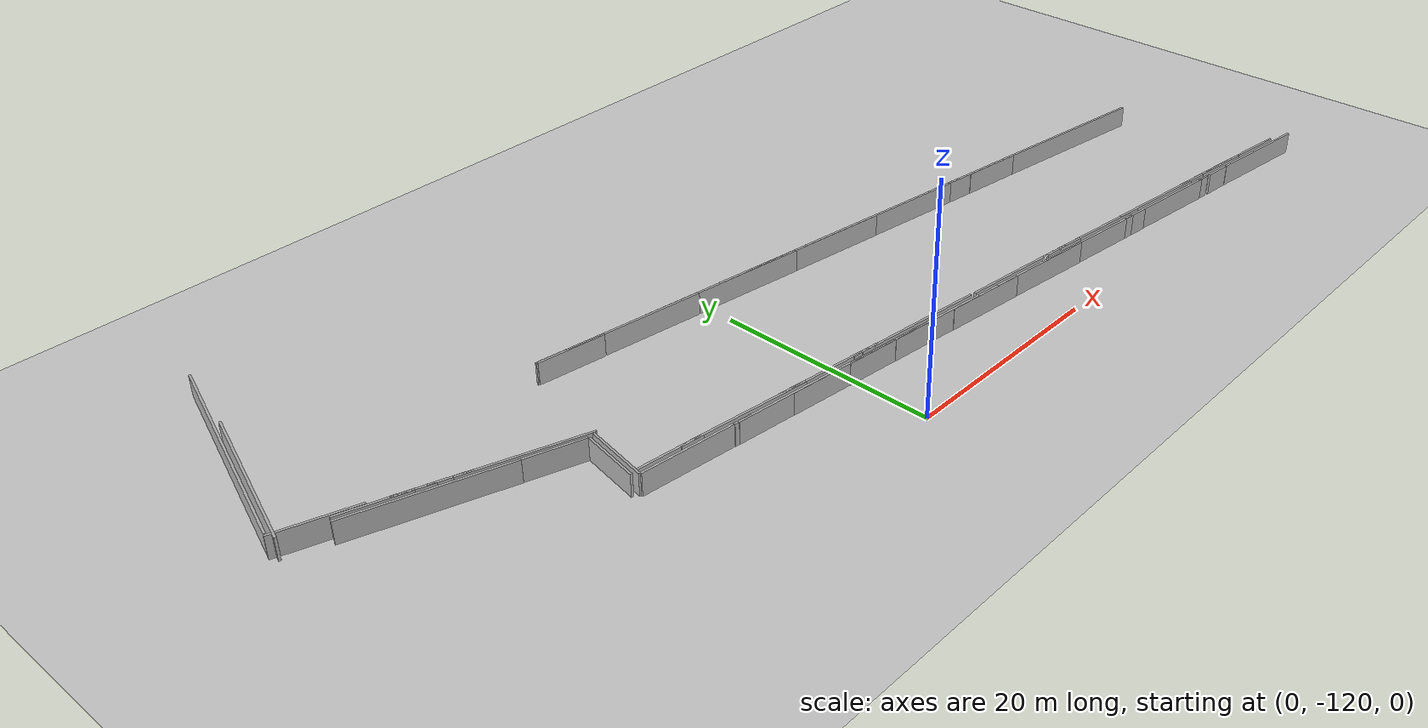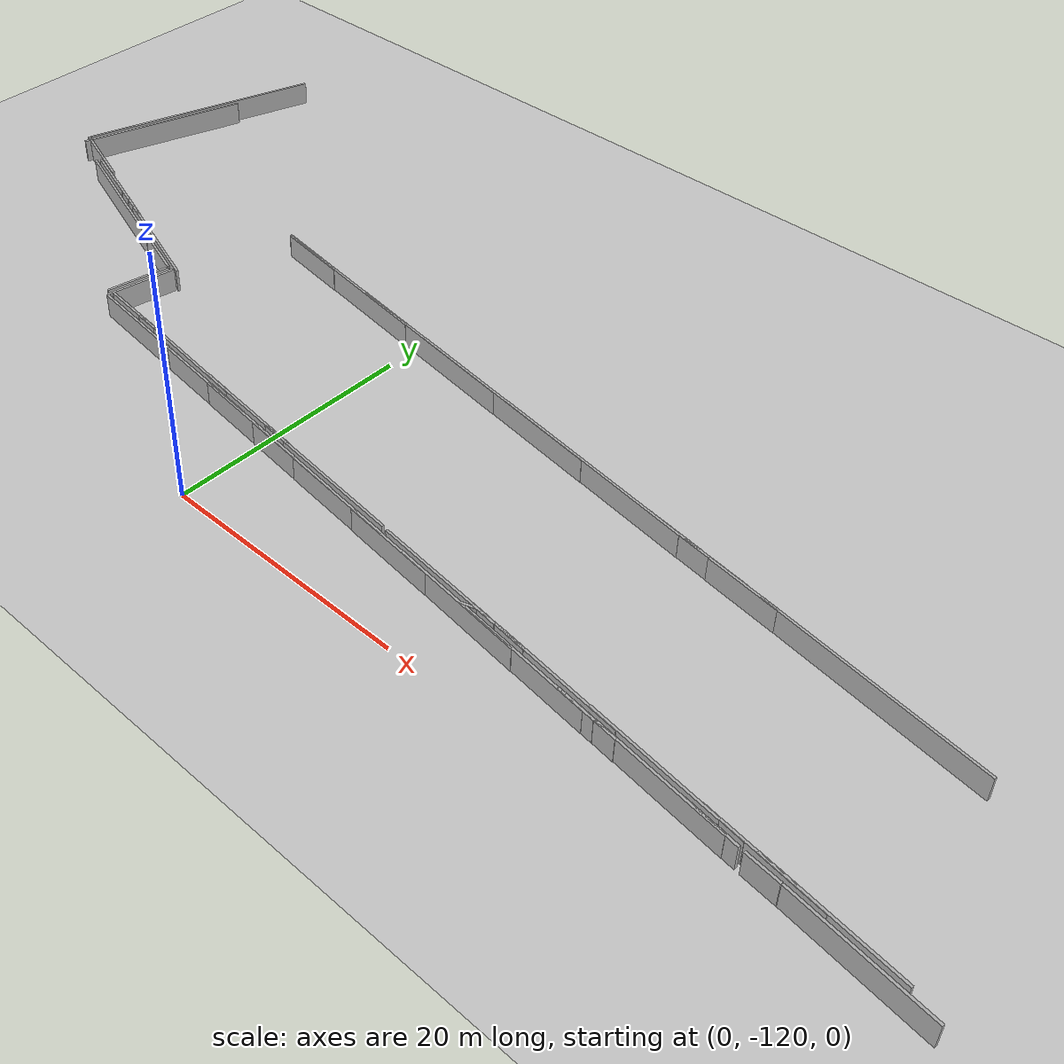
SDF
<sdf version="1.7">
 <world name="slam_world">
  <model name="ground_plane">
   <static>1</static>
   <link name="link">
    <collision name="collision">
     <geometry><plane><normal>0 0 1</normal><size>100 100</size></plane></geometry>
    </collision>
    <visual name="visual">
     <geometry><plane><normal>0 0 1</normal><size>100 100</size></plane></geometry>
     <material>
      <ambient>0.8 0.8 0.8 1</ambient>
      <diffuse>0.8 0.8 0.8 1</diffuse>
      <specular>0.8 0.8 0.8 1</specular>
     </material>
    </visual>
   </link>
  </model>
  <model name="wall_16">
   <static>1</static>
   <pose>-0.999 -112.875 1 0 0 -0.109089</pose>
   <link name="link">
    <collision name="collision"><geometry><box><size>10.5628 0.2 2</size></box></geometry></collision>
    <visual name="visual">
     <geometry><box><size>10.5628 0.2 2</size></box></geometry>
     <material><ambient>0.5 0.5 0.5 1</ambient><diffuse>0.7 0.7 0.7 1</diffuse></material>
    </visual>
   </link>
  </model>
  <model name="wall_35">
   <static>1</static>
   <pose>-6.724 -112.225 1 0 0 -0.108382</pose>
   <link name="link">
    <collision name="collision"><geometry><box><size>9.70696 0.2 2</size></box></geometry></collision>
    <visual name="visual">
     <geometry><box><size>9.70696 0.2 2</size></box></geometry>
     <material><ambient>0.5 0.5 0.5 1</ambient><diffuse>0.7 0.7 0.7 1</diffuse></material>
    </visual>
   </link>
  </model>
  <model name="wall_41">
   <static>1</static>
   <pose>38.726 -117.4 1 0 0 -0.11768</pose>
   <link name="link">
    <collision name="collision"><geometry><box><size>10.2207 0.2 2</size></box></geometry></collision>
    <visual name="visual">
     <geometry><box><size>10.2207 0.2 2</size></box></geometry>
     <material><ambient>0.5 0.5 0.5 1</ambient><diffuse>0.7 0.7 0.7 1</diffuse></material>
    </visual>
   </link>
  </model>
  <model name="wall_53">
   <static>1</static>
   <pose>-37.724 -86.975 1 0 -0 1.25809</pose>
   <link name="link">
    <collision name="collision"><geometry><box><size>20.9668 0.2 2</size></box></geometry></collision>
    <visual name="visual">
     <geometry><box><size>20.9668 0.2 2</size></box></geometry>
     <material><ambient>0.5 0.5 0.5 1</ambient><diffuse>0.7 0.7 0.7 1</diffuse></material>
    </visual>
   </link>
  </model>
  <model name="wall_68">
   <static>1</static>
   <pose>43.651 -103.35 1 0 0 -0.137066</pose>
   <link name="link">
    <collision name="collision"><geometry><box><size>17.5647 0.2 2</size></box></geometry></collision>
    <visual name="visual">
     <geometry><box><size>17.5647 0.2 2</size></box></geometry>
     <material><ambient>0.5 0.5 0.5 1</ambient><diffuse>0.7 0.7 0.7 1</diffuse></material>
    </visual>
   </link>
  </model>
  <model name="wall_86">
   <static>1</static>
   <pose>52.776 -119 1 0 0 -0.11768</pose>
   <link name="link">
    <collision name="collision"><geometry><box><size>10.2207 0.2 2</size></box></geometry></collision>
    <visual name="visual">
     <geometry><box><size>10.2207 0.2 2</size></box></geometry>
     <material><ambient>0.5 0.5 0.5 1</ambient><diffuse>0.7 0.7 0.7 1</diffuse></material>
    </visual>
   </link>
  </model>
  <model name="wall_87">
   <static>1</static>
   <pose>-9.774 -111.375 1 0 0 -0.117934</pose>
   <link name="link">
    <collision name="collision"><geometry><box><size>10.6238 0.2 2</size></box></geometry></collision>
    <visual name="visual">
     <geometry><box><size>10.6238 0.2 2</size></box></geometry>
     <material><ambient>0.5 0.5 0.5 1</ambient><diffuse>0.7 0.7 0.7 1</diffuse></material>
    </visual>
   </link>
  </model>
  <model name="wall_97">
   <static>1</static>
   <pose>8.026 -113.4 1 0 0 -0.109153</pose>
   <link name="link">
    <collision name="collision"><geometry><box><size>11.0156 0.2 2</size></box></geometry></collision>
    <visual name="visual">
     <geometry><box><size>11.0156 0.2 2</size></box></geometry>
     <material><ambient>0.5 0.5 0.5 1</ambient><diffuse>0.7 0.7 0.7 1</diffuse></material>
    </visual>
   </link>
  </model>
  <model name="wall_101">
   <static>1</static>
   <pose>-15.949 -111.175 1 0 0 -0.108764</pose>
   <link name="link">
    <collision name="collision"><geometry><box><size>8.75171 0.2 2</size></box></geometry></collision>
    <visual name="visual">
     <geometry><box><size>8.75171 0.2 2</size></box></geometry>
     <material><ambient>0.5 0.5 0.5 1</ambient><diffuse>0.7 0.7 0.7 1</diffuse></material>
    </visual>
   </link>
  </model>
  <model name="wall_102">
   <static>1</static>
   <pose>19.251 -100.05 1 0 0 -0.137066</pose>
   <link name="link">
    <collision name="collision"><geometry><box><size>17.5647 0.2 2</size></box></geometry></collision>
    <visual name="visual">
     <geometry><box><size>17.5647 0.2 2</size></box></geometry>
     <material><ambient>0.5 0.5 0.5 1</ambient><diffuse>0.7 0.7 0.7 1</diffuse></material>
    </visual>
   </link>
  </model>
  <model name="wall_110">
   <static>1</static>
   <pose>21.376 -115.425 1 0 0 -0.117934</pose>
   <link name="link">
    <collision name="collision"><geometry><box><size>10.6238 0.2 2</size></box></geometry></collision>
    <visual name="visual">
     <geometry><box><size>10.6238 0.2 2</size></box></geometry>
     <material><ambient>0.5 0.5 0.5 1</ambient><diffuse>0.7 0.7 0.7 1</diffuse></material>
    </visual>
   </link>
  </model>
  <model name="wall_139">
   <static>1</static>
   <pose>4.026 -113.45 1 0 0 -0.108858</pose>
   <link name="link">
    <collision name="collision"><geometry><box><size>9.20448 0.2 2</size></box></geometry></collision>
    <visual name="visual">
     <geometry><box><size>9.20448 0.2 2</size></box></geometry>
     <material><ambient>0.5 0.5 0.5 1</ambient><diffuse>0.7 0.7 0.7 1</diffuse></material>
    </visual>
   </link>
  </model>
  <model name="wall_145">
   <static>1</static>
   <pose>29.976 -115.9 1 0 0 -0.11768</pose>
   <link name="link">
    <collision name="collision"><geometry><box><size>10.2207 0.2 2</size></box></geometry></collision>
    <visual name="visual">
     <geometry><box><size>10.2207 0.2 2</size></box></geometry>
     <material><ambient>0.5 0.5 0.5 1</ambient><diffuse>0.7 0.7 0.7 1</diffuse></material>
    </visual>
   </link>
  </model>
  <model name="wall_153">
   <static>1</static>
   <pose>50.626 -118.25 1 0 0 -0.11768</pose>
   <link name="link">
    <collision name="collision"><geometry><box><size>10.2207 0.2 2</size></box></geometry></collision>
    <visual name="visual">
     <geometry><box><size>10.2207 0.2 2</size></box></geometry>
     <material><ambient>0.5 0.5 0.5 1</ambient><diffuse>0.7 0.7 0.7 1</diffuse></material>
    </visual>
   </link>
  </model>
  <model name="wall_174">
   <static>1</static>
   <pose>-8.599 -96.275 1 0 0 -0.138714</pose>
   <link name="link">
    <collision name="collision"><geometry><box><size>15.5494 0.2 2</size></box></geometry></collision>
    <visual name="visual">
     <geometry><box><size>15.5494 0.2 2</size></box></geometry>
     <material><ambient>0.5 0.5 0.5 1</ambient><diffuse>0.7 0.7 0.7 1</diffuse></material>
    </visual>
   </link>
  </model>
  <model name="wall_191">
   <static>1</static>
   <pose>-31.049 -101.25 1 0 0 -0.328876</pose>
   <link name="link">
    <collision name="collision"><geometry><box><size>13.3135 0.2 2</size></box></geometry></collision>
    <visual name="visual">
     <geometry><box><size>13.3135 0.2 2</size></box></geometry>
     <material><ambient>0.5 0.5 0.5 1</ambient><diffuse>0.7 0.7 0.7 1</diffuse></material>
    </visual>
   </link>
  </model>
  <model name="wall_200">
   <static>1</static>
   <pose>10.001 -98.8 1 0 0 -0.137066</pose>
   <link name="link">
    <collision name="collision"><geometry><box><size>17.5647 0.2 2</size></box></geometry></collision>
    <visual name="visual">
     <geometry><box><size>17.5647 0.2 2</size></box></geometry>
     <material><ambient>0.5 0.5 0.5 1</ambient><diffuse>0.7 0.7 0.7 1</diffuse></material>
    </visual>
   </link>
  </model>
  <model name="wall_203">
   <static>1</static>
   <pose>-34.399 -99.625 1 0 0 -0.324475</pose>
   <link name="link">
    <collision name="collision"><geometry><box><size>5.8028 0.2 2</size></box></geometry></collision>
    <visual name="visual">
     <geometry><box><size>5.8028 0.2 2</size></box></geometry>
     <material><ambient>0.5 0.5 0.5 1</ambient><diffuse>0.7 0.7 0.7 1</diffuse></material>
    </visual>
   </link>
  </model>
  <model name="wall_214">
   <static>1</static>
   <pose>-24.053 -103.158 1 0 0 -0.330679</pose>
   <link name="link">
    <collision name="collision"><geometry><box><size>10.6257 0.2 2</size></box></geometry></collision>
    <visual name="visual">
     <geometry><box><size>10.6257 0.2 2</size></box></geometry>
     <material><ambient>0.5 0.5 0.5 1</ambient><diffuse>0.7 0.7 0.7 1</diffuse></material>
    </visual>
   </link>
  </model>
  <model name="wall_216">
   <static>1</static>
   <pose>9.101 -114.025 1 0 0 -0.108942</pose>
   <link name="link">
    <collision name="collision"><geometry><box><size>9.65725 0.2 2</size></box></geometry></collision>
    <visual name="visual">
     <geometry><box><size>9.65725 0.2 2</size></box></geometry>
     <material><ambient>0.5 0.5 0.5 1</ambient><diffuse>0.7 0.7 0.7 1</diffuse></material>
    </visual>
   </link>
  </model>
  <model name="wall_219">
   <static>1</static>
   <pose>37.876 -116.8 1 0 0 -0.11768</pose>
   <link name="link">
    <collision name="collision"><geometry><box><size>10.2207 0.2 2</size></box></geometry></collision>
    <visual name="visual">
     <geometry><box><size>10.2207 0.2 2</size></box></geometry>
     <material><ambient>0.5 0.5 0.5 1</ambient><diffuse>0.7 0.7 0.7 1</diffuse></material>
    </visual>
   </link>
  </model>
  <model name="wall_229">
   <static>1</static>
   <pose>46.651 -117.8 1 0 0 -0.119429</pose>
   <link name="link">
    <collision name="collision"><geometry><box><size>7.55381 0.2 2</size></box></geometry></collision>
    <visual name="visual">
     <geometry><box><size>7.55381 0.2 2</size></box></geometry>
     <material><ambient>0.5 0.5 0.5 1</ambient><diffuse>0.7 0.7 0.7 1</diffuse></material>
    </visual>
   </link>
  </model>
  <model name="wall_245">
   <static>1</static>
   <pose>18.976 -114.65 1 0 0 -0.109019</pose>
   <link name="link">
    <collision name="collision"><geometry><box><size>10.11 0.2 2</size></box></geometry></collision>
    <visual name="visual">
     <geometry><box><size>10.11 0.2 2</size></box></geometry>
     <material><ambient>0.5 0.5 0.5 1</ambient><diffuse>0.7 0.7 0.7 1</diffuse></material>
    </visual>
   </link>
  </model>
  <model name="wall_257">
   <static>1</static>
   <pose>-38.449 -90.85 1 0 -0 1.2577</pose>
   <link name="link">
    <collision name="collision"><geometry><box><size>14.6103 0.2 2</size></box></geometry></collision>
    <visual name="visual">
     <geometry><box><size>14.6103 0.2 2</size></box></geometry>
     <material><ambient>0.5 0.5 0.5 1</ambient><diffuse>0.7 0.7 0.7 1</diffuse></material>
    </visual>
   </link>
  </model>
  <model name="wall_265">
   <static>1</static>
   <pose>30.576 -101.575 1 0 0 -0.12905</pose>
   <link name="link">
    <collision name="collision"><geometry><box><size>6.60492 0.2 2</size></box></geometry></collision>
    <visual name="visual">
     <geometry><box><size>6.60492 0.2 2</size></box></geometry>
     <material><ambient>0.5 0.5 0.5 1</ambient><diffuse>0.7 0.7 0.7 1</diffuse></material>
    </visual>
   </link>
  </model>
  <model name="wall_272">
   <static>1</static>
   <pose>27.526 -116.125 1 0 0 -0.117934</pose>
   <link name="link">
    <collision name="collision"><geometry><box><size>10.6238 0.2 2</size></box></geometry></collision>
    <visual name="visual">
     <geometry><box><size>10.6238 0.2 2</size></box></geometry>
     <material><ambient>0.5 0.5 0.5 1</ambient><diffuse>0.7 0.7 0.7 1</diffuse></material>
    </visual>
   </link>
  </model>
  <model name="wall_281">
   <static>1</static>
   <pose>-19.849 -107.8 1 0 -0 1.39712</pose>
   <link name="link">
    <collision name="collision"><geometry><box><size>5.78705 0.2 2</size></box></geometry></collision>
    <visual name="visual">
     <geometry><box><size>5.78705 0.2 2</size></box></geometry>
     <material><ambient>0.5 0.5 0.5 1</ambient><diffuse>0.7 0.7 0.7 1</diffuse></material>
    </visual>
   </link>
  </model>
  <model name="wall_284">
   <static>1</static>
   <pose>-2.649 -112.175 1 0 0 -0.109944</pose>
   <link name="link">
    <collision name="collision"><geometry><box><size>7.74677 0.2 2</size></box></geometry></collision>
    <visual name="visual">
     <geometry><box><size>7.74677 0.2 2</size></box></geometry>
     <material><ambient>0.5 0.5 0.5 1</ambient><diffuse>0.7 0.7 0.7 1</diffuse></material>
    </visual>
   </link>
  </model>
  <model name="wall_333">
   <static>1</static>
   <pose>-20.349 -107.7 1 0 -0 1.39942</pose>
   <link name="link">
    <collision name="collision"><geometry><box><size>5.27731 0.2 2</size></box></geometry></collision>
    <visual name="visual">
     <geometry><box><size>5.27731 0.2 2</size></box></geometry>
     <material><ambient>0.5 0.5 0.5 1</ambient><diffuse>0.7 0.7 0.7 1</diffuse></material>
    </visual>
   </link>
  </model>
  <model name="wall_335">
   <static>1</static>
   <pose>1.676 -97.675 1 0 0 -0.137393</pose>
   <link name="link">
    <collision name="collision"><geometry><box><size>15.6979 0.2 2</size></box></geometry></collision>
    <visual name="visual">
     <geometry><box><size>15.6979 0.2 2</size></box></geometry>
     <material><ambient>0.5 0.5 0.5 1</ambient><diffuse>0.7 0.7 0.7 1</diffuse></material>
    </visual>
   </link>
  </model>
  <model name="wall_356">
   <static>1</static>
   <pose>-22.449 -104.15 1 0 0 -0.327739</pose>
   <link name="link">
    <collision name="collision"><geometry><box><size>5.2811 0.2 2</size></box></geometry></collision>
    <visual name="visual">
     <geometry><box><size>5.2811 0.2 2</size></box></geometry>
     <material><ambient>0.5 0.5 0.5 1</ambient><diffuse>0.7 0.7 0.7 1</diffuse></material>
    </visual>
   </link>
  </model>
  <model name="wall_370">
   <static>1</static>
   <pose>-17.649 -110.475 1 0 0 -0.107428</pose>
   <link name="link">
    <collision name="collision"><geometry><box><size>5.12957 0.2 2</size></box></geometry></collision>
    <visual name="visual">
     <geometry><box><size>5.12957 0.2 2</size></box></geometry>
     <material><ambient>0.5 0.5 0.5 1</ambient><diffuse>0.7 0.7 0.7 1</diffuse></material>
    </visual>
   </link>
  </model>
  <model name="wall_379">
   <static>1</static>
   <pose>25.801 -115.425 1 0 0 -0.124355</pose>
   <link name="link">
    <collision name="collision"><geometry><box><size>2.82179 0.2 2</size></box></geometry></collision>
    <visual name="visual">
     <geometry><box><size>2.82179 0.2 2</size></box></geometry>
     <material><ambient>0.5 0.5 0.5 1</ambient><diffuse>0.7 0.7 0.7 1</diffuse></material>
    </visual>
   </link>
  </model>
  <model name="wall_412">
   <static>1</static>
   <pose>33.876 -116.85 1 0 0 -0.126308</pose>
   <link name="link">
    <collision name="collision"><geometry><box><size>3.1753 0.2 2</size></box></geometry></collision>
    <visual name="visual">
     <geometry><box><size>3.1753 0.2 2</size></box></geometry>
     <material><ambient>0.5 0.5 0.5 1</ambient><diffuse>0.7 0.7 0.7 1</diffuse></material>
    </visual>
   </link>
  </model>
  <model name="wall_451">
   <static>1</static>
   <pose>33.451 -101.975 1 0 0 -0.128597</pose>
   <link name="link">
    <collision name="collision"><geometry><box><size>5.84829 0.2 2</size></box></geometry></collision>
    <visual name="visual">
     <geometry><box><size>5.84829 0.2 2</size></box></geometry>
     <material><ambient>0.5 0.5 0.5 1</ambient><diffuse>0.7 0.7 0.7 1</diffuse></material>
    </visual>
   </link>
  </model>
  <model name="wall_465">
   <static>1</static>
   <pose>42.051 -117.775 1 0 0 -0.124355</pose>
   <link name="link">
    <collision name="collision"><geometry><box><size>2.82179 0.2 2</size></box></geometry></collision>
    <visual name="visual">
     <geometry><box><size>2.82179 0.2 2</size></box></geometry>
     <material><ambient>0.5 0.5 0.5 1</ambient><diffuse>0.7 0.7 0.7 1</diffuse></material>
    </visual>
   </link>
  </model>
  <model name="wall_478">
   <static>1</static>
   <pose>14.676 -114.675 1 0 0 -0.110657</pose>
   <link name="link">
    <collision name="collision"><geometry><box><size>7.69708 0.2 2</size></box></geometry></collision>
    <visual name="visual">
     <geometry><box><size>7.69708 0.2 2</size></box></geometry>
     <material><ambient>0.5 0.5 0.5 1</ambient><diffuse>0.7 0.7 0.7 1</diffuse></material>
    </visual>
   </link>
  </model>
  <model name="wall_482">
   <static>1</static>
   <pose>43.176 -117.4 1 0 0 -0.126308</pose>
   <link name="link">
    <collision name="collision"><geometry><box><size>3.1753 0.2 2</size></box></geometry></collision>
    <visual name="visual">
     <geometry><box><size>3.1753 0.2 2</size></box></geometry>
     <material><ambient>0.5 0.5 0.5 1</ambient><diffuse>0.7 0.7 0.7 1</diffuse></material>
    </visual>
   </link>
  </model>
  <model name="wall_487">
   <static>1</static>
   <pose>32.151 -116.65 1 0 0 -0.128323</pose>
   <link name="link">
    <collision name="collision"><geometry><box><size>3.1257 0.2 2</size></box></geometry></collision>
    <visual name="visual">
     <geometry><box><size>3.1257 0.2 2</size></box></geometry>
     <material><ambient>0.5 0.5 0.5 1</ambient><diffuse>0.7 0.7 0.7 1</diffuse></material>
    </visual>
   </link>
  </model>
  <model name="wall_489">
   <static>1</static>
   <pose>-31.724 -100.5 1 0 0 -0.335968</pose>
   <link name="link">
    <collision name="collision"><geometry><box><size>3.33654 0.2 2</size></box></geometry></collision>
    <visual name="visual">
     <geometry><box><size>3.33654 0.2 2</size></box></geometry>
     <material><ambient>0.5 0.5 0.5 1</ambient><diffuse>0.7 0.7 0.7 1</diffuse></material>
    </visual>
   </link>
  </model>
  <model name="wall_490">
   <static>1</static>
   <pose>-29.224 -101.35 1 0 0 -0.335968</pose>
   <link name="link">
    <collision name="collision"><geometry><box><size>3.33654 0.2 2</size></box></geometry></collision>
    <visual name="visual">
     <geometry><box><size>3.33654 0.2 2</size></box></geometry>
     <material><ambient>0.5 0.5 0.5 1</ambient><diffuse>0.7 0.7 0.7 1</diffuse></material>
    </visual>
   </link>
  </model>
  <model name="wall_530">
   <static>1</static>
   <pose>46.376 -118.275 1 0 0 -0.097727</pose>
   <link name="link">
    <collision name="collision"><geometry><box><size>2.56223 0.2 2</size></box></geometry></collision>
    <visual name="visual">
     <geometry><box><size>2.56223 0.2 2</size></box></geometry>
     <material><ambient>0.5 0.5 0.5 1</ambient><diffuse>0.7 0.7 0.7 1</diffuse></material>
    </visual>
   </link>
  </model>
  <model name="wall_550">
   <static>1</static>
   <pose>-15.324 -110.75 1 0 0 -0.097253</pose>
   <link name="link">
    <collision name="collision"><geometry><box><size>2.05973 0.2 2</size></box></geometry></collision>
    <visual name="visual">
     <geometry><box><size>2.05973 0.2 2</size></box></geometry>
     <material><ambient>0.5 0.5 0.5 1</ambient><diffuse>0.7 0.7 0.7 1</diffuse></material>
    </visual>
   </link>
  </model>
  <model name="wall_553">
   <static>1</static>
   <pose>-37.8849 -98.1749 1 0 0 -0.328711</pose>
   <link name="link">
    <collision name="collision"><geometry><box><size>6.81487 0.2 2</size></box></geometry></collision>
    <visual name="visual">
     <geometry><box><size>6.81487 0.2 2</size></box></geometry>
     <material><ambient>0.5 0.5 0.5 1</ambient><diffuse>0.7 0.7 0.7 1</diffuse></material>
    </visual>
   </link>
  </model>
  <model name="wall_569">
   <static>1</static>
   <pose>-5.849 -111.8 1 0 0 -0.114877</pose>
   <link name="link">
    <collision name="collision"><geometry><box><size>2.61725 0.2 2</size></box></geometry></collision>
    <visual name="visual">
     <geometry><box><size>2.61725 0.2 2</size></box></geometry>
     <material><ambient>0.5 0.5 0.5 1</ambient><diffuse>0.7 0.7 0.7 1</diffuse></material>
    </visual>
   </link>
  </model>
  <model name="wall_575">
   <static>1</static>
   <pose>1.201 -112.625 1 0 0 -0.088007</pose>
   <link name="link">
    <collision name="collision"><geometry><box><size>1.7066 0.2 2</size></box></geometry></collision>
    <visual name="visual">
     <geometry><box><size>1.7066 0.2 2</size></box></geometry>
     <material><ambient>0.5 0.5 0.5 1</ambient><diffuse>0.7 0.7 0.7 1</diffuse></material>
    </visual>
   </link>
  </model>
  <model name="wall_580">
   <static>1</static>
   <pose>-13.174 -95.675 1 0 0 -0.139582</pose>
   <link name="link">
    <collision name="collision"><geometry><box><size>6.10942 0.2 2</size></box></geometry></collision>
    <visual name="visual">
     <geometry><box><size>6.10942 0.2 2</size></box></geometry>
     <material><ambient>0.5 0.5 0.5 1</ambient><diffuse>0.7 0.7 0.7 1</diffuse></material>
    </visual>
   </link>
  </model>
  <model name="wall_597">
   <static>1</static>
   <pose>22.376 -115.275 1 0 -0 0.295441</pose>
   <link name="link">
    <collision name="collision"><geometry><box><size>1.20208 0.2 2</size></box></geometry></collision>
    <visual name="visual">
     <geometry><box><size>1.20208 0.2 2</size></box></geometry>
     <material><ambient>0.5 0.5 0.5 1</ambient><diffuse>0.7 0.7 0.7 1</diffuse></material>
    </visual>
   </link>
  </model>
  <model name="wall_598">
   <static>1</static>
   <pose>23.501 -115.175 1 0 0 -0.11849</pose>
   <link name="link">
    <collision name="collision"><geometry><box><size>2.11483 0.2 2</size></box></geometry></collision>
    <visual name="visual">
     <geometry><box><size>2.11483 0.2 2</size></box></geometry>
     <material><ambient>0.5 0.5 0.5 1</ambient><diffuse>0.7 0.7 0.7 1</diffuse></material>
    </visual>
   </link>
  </model>
  <model name="wall_604">
   <static>1</static>
   <pose>-11.099 -111.725 1 0 0 -0.088007</pose>
   <link name="link">
    <collision name="collision"><geometry><box><size>1.7066 0.2 2</size></box></geometry></collision>
    <visual name="visual">
     <geometry><box><size>1.7066 0.2 2</size></box></geometry>
     <material><ambient>0.5 0.5 0.5 1</ambient><diffuse>0.7 0.7 0.7 1</diffuse></material>
    </visual>
   </link>
  </model>
  <model name="wall_611">
   <static>1</static>
   <pose>2.101 -112.725 1 0 0 -0.088007</pose>
   <link name="link">
    <collision name="collision"><geometry><box><size>1.7066 0.2 2</size></box></geometry></collision>
    <visual name="visual">
     <geometry><box><size>1.7066 0.2 2</size></box></geometry>
     <material><ambient>0.5 0.5 0.5 1</ambient><diffuse>0.7 0.7 0.7 1</diffuse></material>
    </visual>
   </link>
  </model>
  <model name="wall_633">
   <static>1</static>
   <pose>27.451 -101.15 1 0 0 -0.129703</pose>
   <link name="link">
    <collision name="collision"><geometry><box><size>4.63896 0.2 2</size></box></geometry></collision>
    <visual name="visual">
     <geometry><box><size>4.63896 0.2 2</size></box></geometry>
     <material><ambient>0.5 0.5 0.5 1</ambient><diffuse>0.7 0.7 0.7 1</diffuse></material>
    </visual>
   </link>
  </model>
  <model name="wall_635">
   <static>1</static>
   <pose>44.001 -118 1 0 0 -0.132552</pose>
   <link name="link">
    <collision name="collision"><geometry><box><size>1.51327 0.2 2</size></box></geometry></collision>
    <visual name="visual">
     <geometry><box><size>1.51327 0.2 2</size></box></geometry>
     <material><ambient>0.5 0.5 0.5 1</ambient><diffuse>0.7 0.7 0.7 1</diffuse></material>
    </visual>
   </link>
  </model>
 </world>
</sdf>
